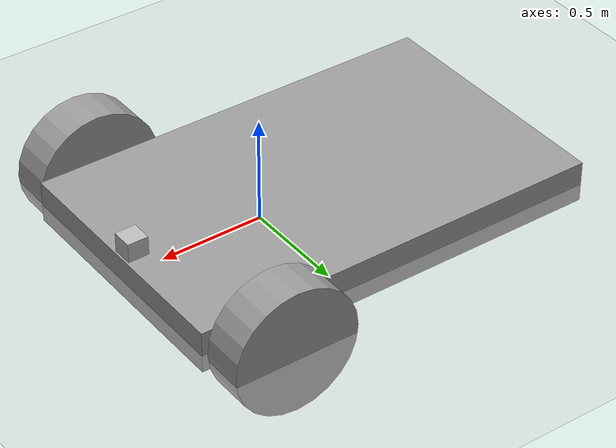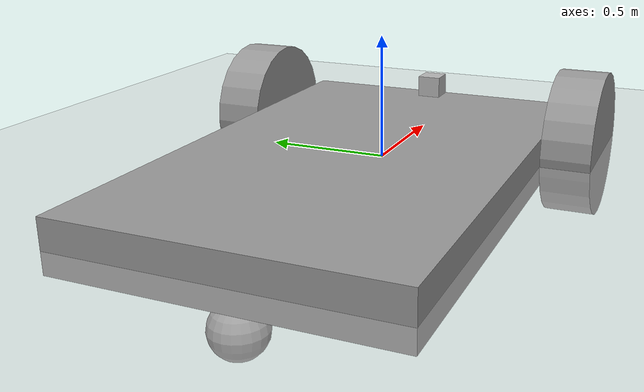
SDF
<?xml version="1.0" ?>
<sdf version="1.5">
  <world name="default">
    <!-- A global light source -->
    <include>
      <uri>model://sun</uri>
    </include>
    <!-- A ground plane -->
    <include>
      <uri>model://ground_plane</uri>
    </include>
    <include>
      <uri>model://my_car_inertial</uri>
    </include>
  </world>
</sdf>

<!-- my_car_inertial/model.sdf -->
<sdf version='1.6'>
  <model name='my_car_inertial'>
    <link name='link_0'>
      <pose frame=''>-0.287956 -0.007918 0.013583 0 -0 0</pose>
      <inertial>
        <mass>1</mass>
        <inertia>
          <ixx>0.133542</ixx>
          <ixy>0</ixy>
          <ixz>0</ixz>
          <iyy>0.336667</iyy>
          <iyz>0</iyz>
          <izz>0.463542</izz>
        </inertia>
        <pose frame=''>0 0 0 0 -0 0</pose>
      </inertial>
      <self_collide>0</self_collide>
      <kinematic>0</kinematic>
      <visual name='visual'>
        <pose frame=''>0 0 0 0 -0 0</pose>
        <geometry>
          <box>
            <size>2 1.25 0.2</size>
          </box>
        </geometry>
        <material>
          <lighting>1</lighting>
          <script>
            <uri>file://media/materials/scripts/gazebo.material</uri>
            <name>Gazebo/Grey</name>
          </script>
          <shader type='pixel'>
            <normal_map>__default__</normal_map>
          </shader>
          <ambient>0.3 0.3 0.3 1</ambient>
          <diffuse>0.7 0.7 0.7 1</diffuse>
          <specular>0.01 0.01 0.01 1</specular>
          <emissive>0 0 0 1</emissive>
        </material>
        <transparency>0</transparency>
        <cast_shadows>1</cast_shadows>
      </visual>
      <collision name='collision'>
        <laser_retro>0</laser_retro>
        <max_contacts>10</max_contacts>
        <pose frame=''>0 0 0 0 -0 0</pose>
        <geometry>
          <box>
            <size>2 1.25 0.2</size>
          </box>
        </geometry>
        <surface>
          <friction>
            <ode>
              <mu>1</mu>
              <mu2>1</mu2>
              <fdir1>0 0 0</fdir1>
              <slip1>0</slip1>
              <slip2>0</slip2>
            </ode>
            <torsional>
              <coefficient>1</coefficient>
              <patch_radius>0</patch_radius>
              <surface_radius>0</surface_radius>
              <use_patch_radius>1</use_patch_radius>
              <ode>
                <slip>0</slip>
              </ode>
            </torsional>
          </friction>
          <bounce>
            <restitution_coefficient>0</restitution_coefficient>
            <threshold>1e+06</threshold>
          </bounce>
          <contact>
            <collide_without_contact>0</collide_without_contact>
            <collide_without_contact_bitmask>1</collide_without_contact_bitmask>
            <collide_bitmask>1</collide_bitmask>
            <ode>
              <soft_cfm>0</soft_cfm>
              <soft_erp>0.2</soft_erp>
              <kp>1e+13</kp>
              <kd>1</kd>
              <max_vel>0.01</max_vel>
              <min_depth>0</min_depth>
            </ode>
            <bullet>
              <split_impulse>1</split_impulse>
              <split_impulse_penetration_threshold>-0.01</split_impulse_penetration_threshold>
              <soft_cfm>0</soft_cfm>
              <soft_erp>0.2</soft_erp>
              <kp>1e+13</kp>
              <kd>1</kd>
            </bullet>
          </contact>
        </surface>
      </collision>
    </link>
    <link name='link_1'>
      <pose frame=''>0.412044 0.757111 0.033581 1.5707 -0 0</pose>
      <inertial>
        <mass>1</mass>
        <inertia>
          <ixx>0.0258333</ixx>
          <ixy>0</ixy>
          <ixz>0</ixz>
          <iyy>0.0258333</iyy>
          <iyz>0</iyz>
          <izz>0.045</izz>
        </inertia>
        <pose frame=''>0 0 0 0 -0 0</pose>
      </inertial>
      <self_collide>0</self_collide>
      <kinematic>0</kinematic>
      <gravity>1</gravity>
      <visual name='visual'>
        <pose frame=''>0 0 0 0 -0 0</pose>
        <geometry>
          <cylinder>
            <radius>0.3</radius>
            <length>0.2</length>
          </cylinder>
        </geometry>
        <material>
          <lighting>1</lighting>
          <script>
            <uri>file://media/materials/scripts/gazebo.material</uri>
            <name>Gazebo/Grey</name>
          </script>
          <shader type='pixel'>
            <normal_map>__default__</normal_map>
          </shader>
          <ambient>0.3 0.3 0.3 1</ambient>
          <diffuse>0.7 0.7 0.7 1</diffuse>
          <specular>0.01 0.01 0.01 1</specular>
          <emissive>0 0 0 1</emissive>
        </material>
        <transparency>0</transparency>
        <cast_shadows>1</cast_shadows>
      </visual>
      <collision name='collision'>
        <laser_retro>0</laser_retro>
        <max_contacts>10</max_contacts>
        <pose frame=''>0 0 0 0 -0 0</pose>
        <geometry>
          <cylinder>
            <radius>0.3</radius>
            <length>0.2</length>
          </cylinder>
        </geometry>
        <surface>
          <friction>
            <ode>
              <mu>1</mu>
              <mu2>1</mu2>
              <fdir1>0 0 0</fdir1>
              <slip1>0</slip1>
              <slip2>0</slip2>
            </ode>
            <torsional>
              <coefficient>1</coefficient>
              <patch_radius>0</patch_radius>
              <surface_radius>0</surface_radius>
              <use_patch_radius>1</use_patch_radius>
              <ode>
                <slip>0</slip>
              </ode>
            </torsional>
          </friction>
          <bounce>
            <restitution_coefficient>0</restitution_coefficient>
            <threshold>1e+06</threshold>
          </bounce>
          <contact>
            <collide_without_contact>0</collide_without_contact>
            <collide_without_contact_bitmask>1</collide_without_contact_bitmask>
            <collide_bitmask>1</collide_bitmask>
            <ode>
              <soft_cfm>0</soft_cfm>
              <soft_erp>0.2</soft_erp>
              <kp>1e+13</kp>
              <kd>1</kd>
              <max_vel>0.01</max_vel>
              <min_depth>0</min_depth>
            </ode>
            <bullet>
              <split_impulse>1</split_impulse>
              <split_impulse_penetration_threshold>-0.01</split_impulse_penetration_threshold>
              <soft_cfm>0</soft_cfm>
              <soft_erp>0.2</soft_erp>
              <kp>1e+13</kp>
              <kd>1</kd>
            </bullet>
          </contact>
        </surface>
      </collision>
    </link>
    <link name='link_1_clone'>
      <pose frame=''>0.412044 -0.732947 0.033583 1.5707 -0 0</pose>
      <inertial>
        <mass>1</mass>
        <inertia>
          <ixx>0.0258333</ixx>
          <ixy>0</ixy>
          <ixz>0</ixz>
          <iyy>0.0258333</iyy>
          <iyz>0</iyz>
          <izz>0.045</izz>
        </inertia>
        <pose frame=''>0 0 0 0 -0 0</pose>
      </inertial>
      <self_collide>0</self_collide>
      <kinematic>0</kinematic>
      <gravity>1</gravity>
      <visual name='visual'>
        <pose frame=''>0 0 0 0 -0 0</pose>
        <geometry>
          <cylinder>
            <radius>0.3</radius>
            <length>0.2</length>
          </cylinder>
        </geometry>
        <material>
          <lighting>1</lighting>
          <script>
            <uri>file://media/materials/scripts/gazebo.material</uri>
            <name>Gazebo/Grey</name>
          </script>
          <shader type='pixel'>
            <normal_map>__default__</normal_map>
          </shader>
          <ambient>0.3 0.3 0.3 1</ambient>
          <diffuse>0.7 0.7 0.7 1</diffuse>
          <specular>0.01 0.01 0.01 1</specular>
          <emissive>0 0 0 1</emissive>
        </material>
        <transparency>0</transparency>
        <cast_shadows>1</cast_shadows>
      </visual>
      <collision name='collision'>
        <laser_retro>0</laser_retro>
        <max_contacts>10</max_contacts>
        <pose frame=''>0 0 0 0 -0 0</pose>
        <geometry>
          <cylinder>
            <radius>0.3</radius>
            <length>0.2</length>
          </cylinder>
        </geometry>
        <surface>
          <friction>
            <ode>
              <mu>1</mu>
              <mu2>1</mu2>
              <fdir1>0 0 0</fdir1>
              <slip1>0</slip1>
              <slip2>0</slip2>
            </ode>
            <torsional>
              <coefficient>1</coefficient>
              <patch_radius>0</patch_radius>
              <surface_radius>0</surface_radius>
              <use_patch_radius>1</use_patch_radius>
              <ode>
                <slip>0</slip>
              </ode>
            </torsional>
          </friction>
          <bounce>
            <restitution_coefficient>0</restitution_coefficient>
            <threshold>1e+06</threshold>
          </bounce>
          <contact>
            <collide_without_contact>0</collide_without_contact>
            <collide_without_contact_bitmask>1</collide_without_contact_bitmask>
            <collide_bitmask>1</collide_bitmask>
            <ode>
              <soft_cfm>0</soft_cfm>
              <soft_erp>0.2</soft_erp>
              <kp>1e+13</kp>
              <kd>1</kd>
              <max_vel>0.01</max_vel>
              <min_depth>0</min_depth>
            </ode>
            <bullet>
              <split_impulse>1</split_impulse>
              <split_impulse_penetration_threshold>-0.01</split_impulse_penetration_threshold>
              <soft_cfm>0</soft_cfm>
              <soft_erp>0.2</soft_erp>
              <kp>1e+13</kp>
              <kd>1</kd>
            </bullet>
          </contact>
        </surface>
      </collision>
    </link>
    <link name='link_2'>
      <pose frame=''>-1.18796 -0.027918 -0.186417 0 -0 0</pose>
      <inertial>
        <mass>1</mass>
        <inertia>
          <ixx>0.004</ixx>
          <ixy>0</ixy>
          <ixz>0</ixz>
          <iyy>0.004</iyy>
          <iyz>0</iyz>
          <izz>0.004</izz>
        </inertia>
        <pose frame=''>0 0 0 0 -0 0</pose>
      </inertial>
      <self_collide>0</self_collide>
      <kinematic>0</kinematic>
      <visual name='visual'>
        <pose frame=''>0 0 0 0 -0 0</pose>
        <geometry>
          <sphere>
            <radius>0.1</radius>
          </sphere>
        </geometry>
        <material>
          <lighting>1</lighting>
          <script>
            <uri>file://media/materials/scripts/gazebo.material</uri>
            <name>Gazebo/Grey</name>
          </script>
          <shader type='pixel'>
            <normal_map>__default__</normal_map>
          </shader>
          <ambient>0.3 0.3 0.3 1</ambient>
          <diffuse>0.7 0.7 0.7 1</diffuse>
          <specular>0.01 0.01 0.01 1</specular>
          <emissive>0 0 0 1</emissive>
        </material>
        <transparency>0</transparency>
        <cast_shadows>1</cast_shadows>
      </visual>
      <collision name='collision'>
        <laser_retro>0</laser_retro>
        <max_contacts>10</max_contacts>
        <pose frame=''>0 0 0 0 -0 0</pose>
        <geometry>
          <sphere>
            <radius>0.1</radius>
          </sphere>
        </geometry>
        <surface>
          <friction>
            <ode>
              <mu>1</mu>
              <mu2>1</mu2>
              <fdir1>0 0 0</fdir1>
              <slip1>0</slip1>
              <slip2>0</slip2>
            </ode>
            <torsional>
              <coefficient>1</coefficient>
              <patch_radius>0</patch_radius>
              <surface_radius>0</surface_radius>
              <use_patch_radius>1</use_patch_radius>
              <ode>
                <slip>0</slip>
              </ode>
            </torsional>
          </friction>
          <bounce>
            <restitution_coefficient>0</restitution_coefficient>
            <threshold>1e+06</threshold>
          </bounce>
          <contact>
            <collide_without_contact>0</collide_without_contact>
            <collide_without_contact_bitmask>1</collide_without_contact_bitmask>
            <collide_bitmask>1</collide_bitmask>
            <ode>
              <soft_cfm>0</soft_cfm>
              <soft_erp>0.2</soft_erp>
              <kp>1e+13</kp>
              <kd>1</kd>
              <max_vel>0.01</max_vel>
              <min_depth>0</min_depth>
            </ode>
            <bullet>
              <split_impulse>1</split_impulse>
              <split_impulse_penetration_threshold>-0.01</split_impulse_penetration_threshold>
              <soft_cfm>0</soft_cfm>
              <soft_erp>0.2</soft_erp>
              <kp>1e+13</kp>
              <kd>1</kd>
            </bullet>
          </contact>
        </surface>
      </collision>
    </link>
    <model name='depth_camera'>
      <link name='link'>
        <pose frame=''>0 0 0.05 0 -0 0</pose>
        <inertial>
          <mass>0.1</mass>
          <inertia>
            <ixx>0.000166667</ixx>
            <iyy>0.000166667</iyy>
            <izz>0.000166667</izz>
            <ixy>0</ixy>
            <ixz>0</ixz>
            <iyz>0</iyz>
          </inertia>
        </inertial>
        <collision name='collision'>
          <geometry>
            <box>
              <size>0.1 0.1 0.1</size>
            </box>
          </geometry>
          <max_contacts>10</max_contacts>
          <surface>
            <contact>
              <ode/>
            </contact>
            <bounce/>
            <friction>
              <torsional>
                <ode/>
              </torsional>
              <ode/>
            </friction>
          </surface>
        </collision>
        <visual name='visual'>
          <geometry>
            <box>
              <size>0.1 0.1 0.1</size>
            </box>
          </geometry>
        </visual>
        <sensor name='camera' type='depth'>
          <camera name='__default__'>
            <horizontal_fov>1.047</horizontal_fov>
            <image>
              <width>320</width>
              <height>240</height>
            </image>
            <clip>
              <near>0.1</near>
              <far>100</far>
            </clip>
          </camera>
          <always_on>1</always_on>
          <update_rate>30</update_rate>
          <visualize>1</visualize>
        </sensor>
        <self_collide>0</self_collide>
        <kinematic>0</kinematic>
      </link>
      <pose frame=''>0.65182 0.01167 0.105669 0 -0 0</pose>
    </model>
    <joint name='link_0_JOINT_0' type='revolute'>
      <parent>link_0</parent>
      <child>link_1</child>
      <pose frame=''>0 0 0 0 -0 0</pose>
      <axis>
        <xyz>0 0 1</xyz>
        <use_parent_model_frame>0</use_parent_model_frame>
        <limit>
          <lower>-1.79769e+308</lower>
          <upper>1.79769e+308</upper>
          <effort>-1</effort>
          <velocity>-1</velocity>
        </limit>
        <dynamics>
          <spring_reference>0</spring_reference>
          <spring_stiffness>0</spring_stiffness>
          <damping>0</damping>
          <friction>0</friction>
        </dynamics>
      </axis>
      <physics>
        <ode>
          <limit>
            <cfm>0</cfm>
            <erp>0.2</erp>
          </limit>
          <suspension>
            <cfm>0</cfm>
            <erp>0.2</erp>
          </suspension>
        </ode>
      </physics>
    </joint>
    <joint name='link_0_JOINT_1' type='revolute'>
      <parent>link_0</parent>
      <child>link_1_clone</child>
      <pose frame=''>0 0 0 0 -0 0</pose>
      <axis>
        <xyz>0 0 1</xyz>
        <use_parent_model_frame>0</use_parent_model_frame>
        <limit>
          <lower>-1.79769e+308</lower>
          <upper>1.79769e+308</upper>
          <effort>-1</effort>
          <velocity>-1</velocity>
        </limit>
        <dynamics>
          <spring_reference>0</spring_reference>
          <spring_stiffness>0</spring_stiffness>
          <damping>0</damping>
          <friction>0</friction>
        </dynamics>
      </axis>
      <physics>
        <ode>
          <limit>
            <cfm>0</cfm>
            <erp>0.2</erp>
          </limit>
          <suspension>
            <cfm>0</cfm>
            <erp>0.2</erp>
          </suspension>
        </ode>
      </physics>
    </joint>
    <joint name='link_0_JOINT_2' type='ball'>
      <parent>link_0</parent>
      <child>link_2</child>
      <pose frame=''>0 0 0 0 -0 0</pose>
      <physics>
        <ode>
          <limit>
            <cfm>0</cfm>
            <erp>0.2</erp>
          </limit>
          <suspension>
            <cfm>0</cfm>
            <erp>0.2</erp>
          </suspension>
        </ode>
      </physics>
    </joint>
    <joint name='link_0_JOINT_3' type='fixed'>
      <parent>link_0</parent>
      <child>depth_camera::link</child>
      <pose frame=''>0 0 0 0 -0 0</pose>
      <physics>
        <ode>
          <limit>
            <cfm>0</cfm>
            <erp>0.2</erp>
          </limit>
          <suspension>
            <cfm>0</cfm>
            <erp>0.2</erp>
          </suspension>
        </ode>
      </physics>
    </joint>
    <static>0</static>
    <allow_auto_disable>1</allow_auto_disable>
    <plugin name='follower' filename='libFollowerPlugin.so'/>
  </model>
</sdf>
